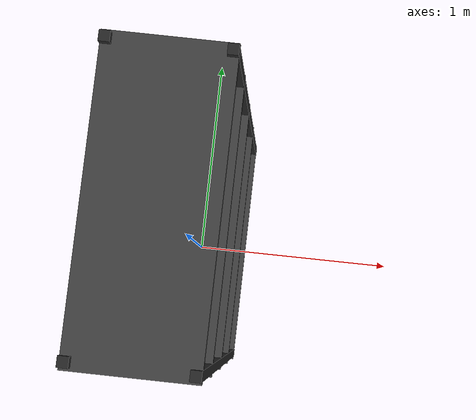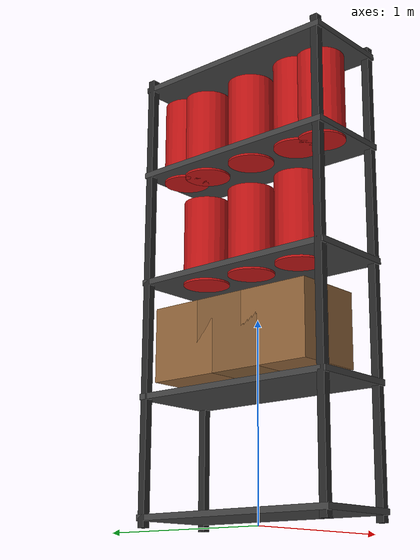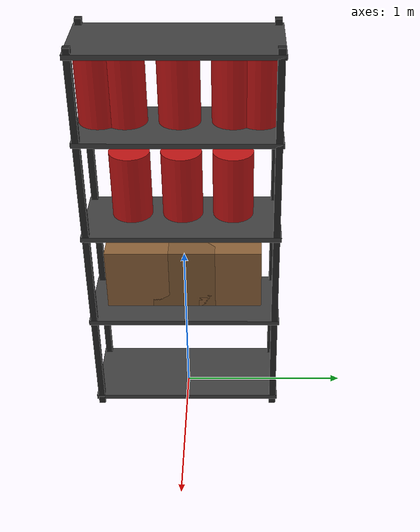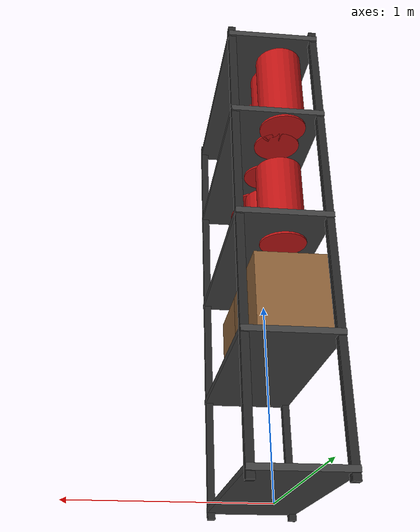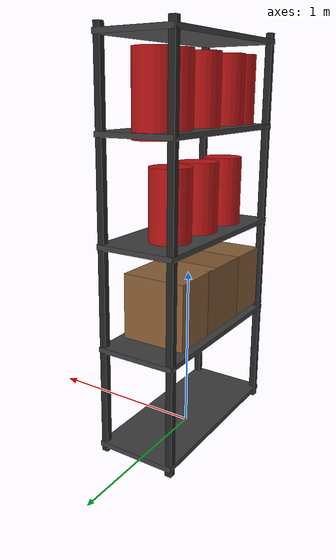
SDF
<?xml version="1.0" encoding="UTF-8"?>
<sdf version="1.9">
  <model name="depot_barrel_rack">
    <static>true</static>
    <!-- Single shelving cabinet: 1.2 m wide x 0.5 m deep x 2.4 m tall -->
    <link name="link">
      <!-- Frame posts -->
      <visual name="post_fl"><pose>-0.22  0.55 1.2 0 0 0</pose><geometry><box><size>0.04 0.04 2.4</size></box></geometry><material><diffuse>0.15 0.15 0.15 1</diffuse></material></visual>
      <visual name="post_fr"><pose>-0.22 -0.55 1.2 0 0 0</pose><geometry><box><size>0.04 0.04 2.4</size></box></geometry><material><diffuse>0.15 0.15 0.15 1</diffuse></material></visual>
      <visual name="post_bl"><pose> 0.22  0.55 1.2 0 0 0</pose><geometry><box><size>0.04 0.04 2.4</size></box></geometry><material><diffuse>0.15 0.15 0.15 1</diffuse></material></visual>
      <visual name="post_br"><pose> 0.22 -0.55 1.2 0 0 0</pose><geometry><box><size>0.04 0.04 2.4</size></box></geometry><material><diffuse>0.15 0.15 0.15 1</diffuse></material></visual>
      <!-- Shelves -->
      <visual name="shelf_0"><pose>0 0 0.05 0 0 0</pose><geometry><box><size>0.48 1.16 0.03</size></box></geometry><material><diffuse>0.25 0.25 0.25 1</diffuse></material></visual>
      <visual name="shelf_1"><pose>0 0 0.65 0 0 0</pose><geometry><box><size>0.48 1.16 0.03</size></box></geometry><material><diffuse>0.25 0.25 0.25 1</diffuse></material></visual>
      <visual name="shelf_2"><pose>0 0 1.25 0 0 0</pose><geometry><box><size>0.48 1.16 0.03</size></box></geometry><material><diffuse>0.25 0.25 0.25 1</diffuse></material></visual>
      <visual name="shelf_3"><pose>0 0 1.85 0 0 0</pose><geometry><box><size>0.48 1.16 0.03</size></box></geometry><material><diffuse>0.25 0.25 0.25 1</diffuse></material></visual>
      <visual name="shelf_4"><pose>0 0 2.35 0 0 0</pose><geometry><box><size>0.48 1.16 0.03</size></box></geometry><material><diffuse>0.25 0.25 0.25 1</diffuse></material></visual>
      <!-- Top shelf: red barrels -->
      <visual name="barrel_0"><pose>-0.05  0.30 2.05 0 0 0</pose><geometry><cylinder><radius>0.12</radius><length>0.45</length></cylinder></geometry><material><diffuse>0.75 0.08 0.08 1</diffuse><specular>0.4 0.1 0.1 1</specular></material></visual>
      <visual name="barrel_1"><pose>-0.05  0.00 2.05 0 0 0</pose><geometry><cylinder><radius>0.12</radius><length>0.45</length></cylinder></geometry><material><diffuse>0.75 0.08 0.08 1</diffuse><specular>0.4 0.1 0.1 1</specular></material></visual>
      <visual name="barrel_2"><pose>-0.05 -0.30 2.05 0 0 0</pose><geometry><cylinder><radius>0.12</radius><length>0.45</length></cylinder></geometry><material><diffuse>0.75 0.08 0.08 1</diffuse><specular>0.4 0.1 0.1 1</specular></material></visual>
      <visual name="barrel_3"><pose>-0.05  0.45 2.05 0 0 0</pose><geometry><cylinder><radius>0.12</radius><length>0.45</length></cylinder></geometry><material><diffuse>0.75 0.08 0.08 1</diffuse><specular>0.4 0.1 0.1 1</specular></material></visual>
      <visual name="barrel_4"><pose>-0.05 -0.45 2.05 0 0 0</pose><geometry><cylinder><radius>0.12</radius><length>0.45</length></cylinder></geometry><material><diffuse>0.75 0.08 0.08 1</diffuse><specular>0.4 0.1 0.1 1</specular></material></visual>
      <!-- Mid shelf: red barrels -->
      <visual name="barrel_5"><pose>-0.05  0.30 1.45 0 0 0</pose><geometry><cylinder><radius>0.12</radius><length>0.45</length></cylinder></geometry><material><diffuse>0.75 0.08 0.08 1</diffuse><specular>0.4 0.1 0.1 1</specular></material></visual>
      <visual name="barrel_6"><pose>-0.05  0.00 1.45 0 0 0</pose><geometry><cylinder><radius>0.12</radius><length>0.45</length></cylinder></geometry><material><diffuse>0.75 0.08 0.08 1</diffuse><specular>0.4 0.1 0.1 1</specular></material></visual>
      <visual name="barrel_7"><pose>-0.05 -0.30 1.45 0 0 0</pose><geometry><cylinder><radius>0.12</radius><length>0.45</length></cylinder></geometry><material><diffuse>0.75 0.08 0.08 1</diffuse><specular>0.4 0.1 0.1 1</specular></material></visual>
      <!-- Lower shelf: wooden crates -->
      <visual name="crate_0"><pose>-0.05  0.28 0.90 0 0 0</pose><geometry><box><size>0.38 0.38 0.38</size></box></geometry><material><diffuse>0.55 0.38 0.22 1</diffuse></material></visual>
      <visual name="crate_1"><pose>-0.05 -0.28 0.90 0 0 0</pose><geometry><box><size>0.38 0.38 0.38</size></box></geometry><material><diffuse>0.55 0.38 0.22 1</diffuse></material></visual>
      <visual name="crate_2"><pose>-0.05  0.00 0.90 0 0 0</pose><geometry><box><size>0.38 0.38 0.38</size></box></geometry><material><diffuse>0.50 0.35 0.20 1</diffuse></material></visual>
      <collision name="collision">
        <geometry>
          <box>
            <size>0.5 1.2 2.4</size>
          </box>
        </geometry>
      </collision>
    </link>
  </model>
</sdf>
